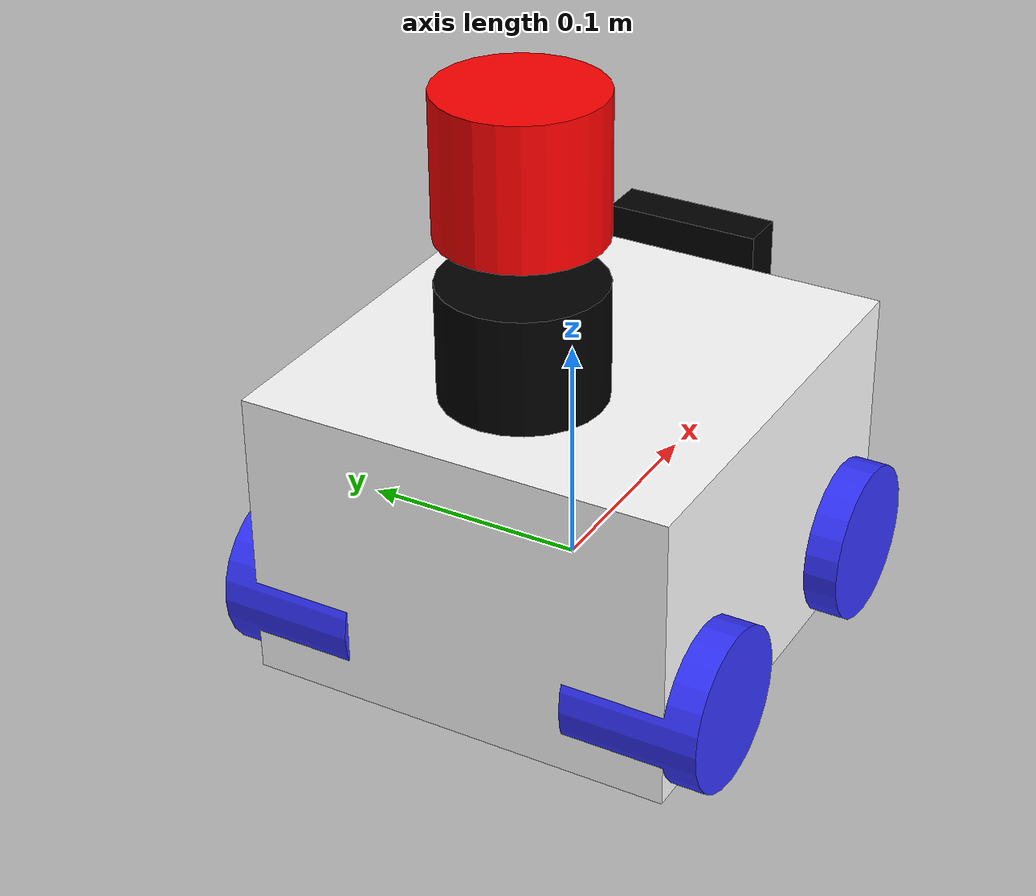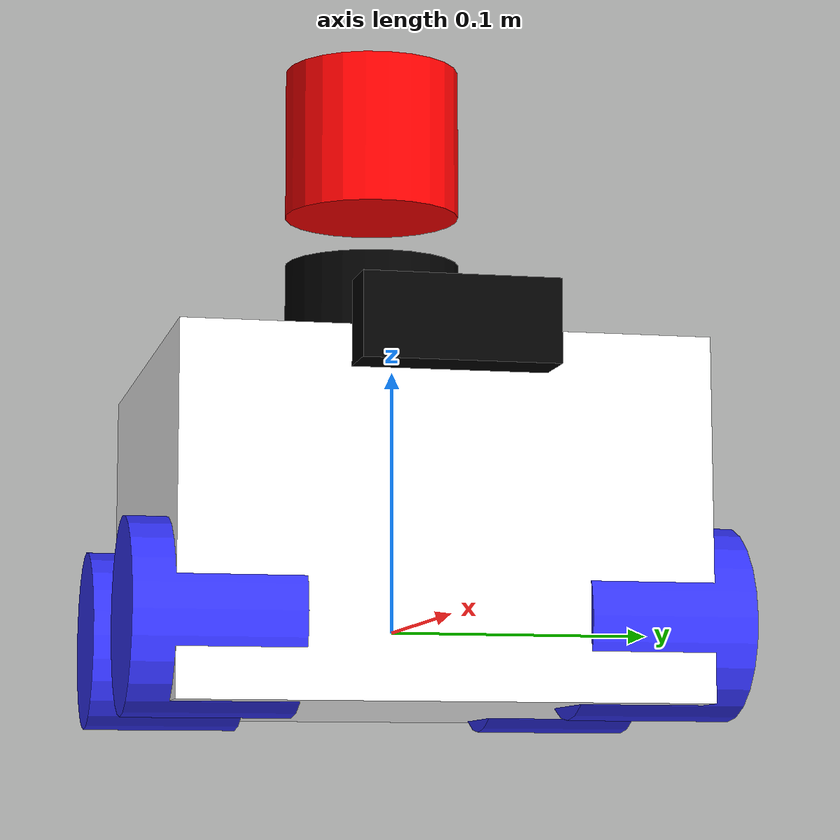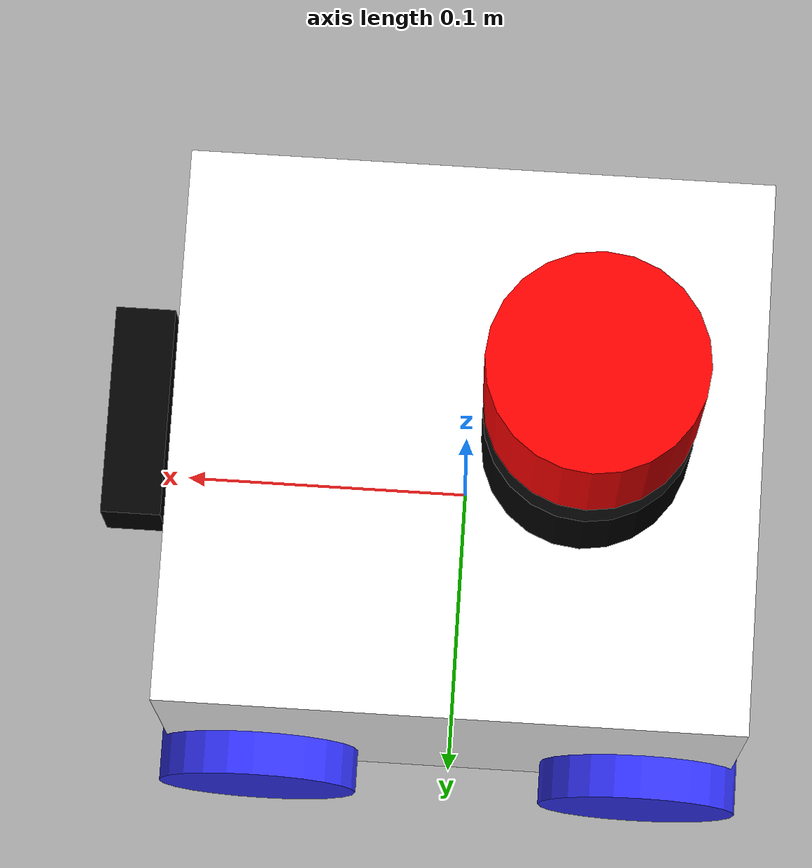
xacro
<?xml version="1.0"?>
<robot xmlns:xacro="http://www.ros.org/wiki/xacro"  name="lidar_bot">

	<xacro:arg name="use_ros2_control" default="true"/>

    <!-- Example link -->
    <xacro:include filename="inertial_macros.xacro" />
    <xacro:include filename="robot_core.xacro" />

	<xacro:if value="$(arg use_ros2_control)">
		<xacro:include filename="ros2_control.xacro" />
	</xacro:if>
	<xacro:unless value="$(arg use_ros2_control)">
		<xacro:include filename="gazebo_control.xacro" />
	</xacro:unless>

	<xacro:include filename="lidar.xacro" />
	<xacro:include filename="camera.xacro" />

</robot>

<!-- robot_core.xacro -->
<robot xmlns:xacro="http://www.ros.org/wiki/xacro">

    <material name="white">
        <color rgba="1 1 1 1"/>
    </material>

    <material name="orange">
        <color rgba="1 0.3 0.1 1"/>
    </material>

    <material name="blue">
        <color rgba="0.2 0.2 1 1"/>
    </material>

    <material name="black">
        <color rgba="0 0 0 1"/>
    </material>

	<material name="red">
		<color rgba="1 0 0 1"/>
	</material>

    <link name="base_link">
    </link>

    <joint name="chassis_joint" type="fixed">
        <parent link="base_link"/>
        <child link="chassis"/>
        <origin xyz="-0.1 0 0"/>
    </joint>

    <!-- CHASSIS -->
    <link name="chassis">
        <visual>
            <origin xyz="0.10 0 0.035" rpy="0 0 0"/>
            <geometry>
                <box size="0.20 0.19 0.13"/>
            </geometry>
            <material name="white"/>
        </visual>
        <collision>
            <origin xyz="0.10 0 0.035" rpy="0 0 0"/>
            <geometry>
                <box size="0.20 0.19 0.13"/>
            </geometry>
        </collision>
        <!-- ... intertia ... -->
        <xacro:inertial_box mass="0.5" x="0.20" y="0.19" z="0.13">
            <origin xyz="0.15 0 0.075" rpy="0 0 0"/>
        </xacro:inertial_box>
    </link>
	<gazebo reference="chassis">
		<material>Gazebo/White</material>
	</gazebo>

	<!-- LEFT BACK WHEEL -->
    <joint name="left_back_wheel_joint" type="continuous">
        <parent link="base_link"/>
        <child link="left_back_wheel"/>
        <origin xyz="-0.0675 0.08 0" rpy="-${pi/2} 0 0" />
        <axis xyz="0 0 1"/>
    </joint>

    <link name="left_back_wheel">
        <visual>
            <geometry>
                <cylinder radius="0.035" length="0.06"/>
            </geometry>
            <material name="blue"/>
        </visual>
        <collision>
            <geometry>
                <sphere  radius="0.035"/>
            </geometry>
        </collision>
        <!-- ... intertia ... -->
        <xacro:inertial_cylinder mass="0.1" length="0.035" radius="0.06">
            <origin xyz="0 0 0" rpy="0 0 0"/>
        </xacro:inertial_cylinder>
    </link>

	<gazebo reference="left_back_wheel">
		<material>Gazebo/Blue</material>
	</gazebo>

    <!-- LEFT FRONT WHEEL -->
    <joint name="left_front_wheel_joint" type="continuous"> <!--   continuous -->
        <parent link="base_link"/> <!--   base_link -->
        <child link="left_front_wheel"/>
        <origin xyz="0.0675 0.08 0" rpy="-${pi/2} 0 0"/>
        <axis xyz="0 0 1"/>
    </joint>

    <link name="left_front_wheel">
        <visual>
            <geometry>
                <cylinder radius="0.035" length="0.06" />
            </geometry>
            <material name="blue"/>
        </visual>
        <collision>
            <geometry>
                <cylinder radius="0.035" length="0.06"/>
            </geometry>
        </collision>
		<!-- ... intertia ... -->
        <xacro:inertial_cylinder mass="0.1" length="0.035" radius="0.06">
            <origin xyz="0 0 0" rpy="0 0 0"/>
        </xacro:inertial_cylinder>
    </link>

	<gazebo reference="left_front_wheel">
		<material>Gazebo/Blue</material>
		<mu1 value="0.1"/>
		<mu2 value="0.1"/>
	</gazebo>

    <!-- RIGHT BACK WHEEL -->
    <joint name="right_back_wheel_joint" type="continuous">
        <parent link="base_link"/>
        <child link="right_back_wheel"/>
        <origin xyz="-0.0675 -0.08 0" rpy="${pi/2} 0 0"/>
        <axis xyz="0 0 -1"/>
    </joint>

    <link name="right_back_wheel">
        <visual>
            <geometry>
                <cylinder radius="0.035" length="0.06" />
            </geometry>
            <material name="blue"/>
        </visual>
        <collision>
            <geometry>
                <sphere  radius="0.035"/>
			</geometry>
        </collision>
        <!-- ... intertia ... -->
        <xacro:inertial_cylinder mass="0.1" length="0.035" radius="0.06">
            <origin xyz="0 0 0" rpy="0 0 0"/>
        </xacro:inertial_cylinder>
    </link>

	<gazebo reference="right_back_wheel">
		<material>Gazebo/Blue</material>
	</gazebo>

    <!-- RIGHT FRONT WHEEL -->
    <joint name="right_front_wheel_joint" type="continuous">  <!--   continuous -->
        <parent link="base_link"/>  <!--   base_link -->
        <child link="right_front_wheel"/>
        <origin xyz="0.0675 -0.08 0" rpy="${pi/2} 0 0"/>
        <axis xyz="0 0 -1"/>
    </joint>

    <link name="right_front_wheel">
        <visual>
            <geometry>
                <cylinder radius="0.035" length="0.06" />
            </geometry>
            <material name="blue"/>
        </visual>
        <collision>
            <geometry>
                <cylinder radius="0.035" length="0.06"/>
            </geometry>
        </collision>
        <!-- ... intertia ... -->
        <xacro:inertial_cylinder mass="0.1" length="0.035" radius="0.06">
            <origin xyz="0 0 0" rpy="0 0 0"/>
        </xacro:inertial_cylinder>
    </link>

	<gazebo reference="right_front_wheel">
		<material>Gazebo/Blue</material>
		<mu1 value="0.1"/>
		<mu2 value="0.1"/>
	</gazebo>

</robot>

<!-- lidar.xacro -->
<robot xmlns:xacro="http://www.ros.org/wiki/xacro" >

	<!-- DELTA2G LIDAR -->
	<joint name="delta2g_lidar_joint" type="fixed">
        <parent link="chassis"/>
        <child link="delta2g"/>
        <origin xyz="0.06 0 0.17" rpy="0 0 0"/>
    </joint>
    <link name="delta2g">
        <visual>
			<origin xyz="0 0 -0.05" rpy="0 0 ${pi}"/>
            <geometry>
                <cylinder radius="0.035" length="0.06" />
            </geometry>
            <material name="black"/>
        </visual>
    </link>
	<gazebo reference="delta2g">
		<material>Gazebo/Black</material>
	</gazebo>

	 <!-- LIDAR -->
    <joint name="lidar_joint" type="fixed">
        <parent link="chassis"/>
        <child link="lidar"/>
        <origin xyz="0.06 0 0.20" rpy="0 0 0"/>
    </joint>

    <link name="lidar">
        <visual>
            <geometry>
                <cylinder radius="0.035" length="0.06" />
            </geometry>
            <material name="red"/>
        </visual>
        <collision>
            <geometry>
                <cylinder radius="0.035" length="0.06"/>
            </geometry>
        </collision>
        <!-- ... intertia ... -->
        <xacro:inertial_cylinder mass="0.1" length="0.035" radius="0.06">
            <origin xyz="0 0 0" rpy="0 0 0"/>
        </xacro:inertial_cylinder>
    </link>

	<gazebo reference="lidar">
		<material>Gazebo/Red</material>
		<sensor name="laser" type="ray">
			<pose> 0 0 0 0 0 0 </pose>
			<visualize>true</visualize>
			<update_rate>10</update_rate>
			<ray>
				<scan>
					<horizontal>
						<samples>360</samples>
						<min_angle>-3.14</min_angle>
						<max_angle>3.14</max_angle>
					</horizontal>
				</scan>
				<range>
					<min>0.3</min>
					<max>12</max>
				</range>
			</ray>
			<plugin name="laser_controller" filename="libgazebo_ros_ray_sensor.so">
				<ros>
					<argument>~/out:=scan</argument>
				</ros>
				<output_type>sensor_msgs/LaserScan</output_type>
				<frame_name>lidar</frame_name>
			</plugin>
		</sensor>
	</gazebo>

</robot>

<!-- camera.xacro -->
<robot xmlns:xacro="http://www.ros.org/wiki/xacro" >

    <joint name="camera_joint" type="fixed">
        <parent link="chassis"/>
        <child link="camera_link"/>
        <origin xyz="0.21 0 0.10" rpy="0 0 0"/>
    </joint>

    <link name="camera_link">
        <visual>
            <geometry>
                <box size="0.02 0.07 0.03"/>
            </geometry>
            <material name="black"/>
        </visual>
    </link>

    <joint name="camera_optical_joint" type="fixed">
        <parent link="camera_link"/>
        <child link="camera_link_optical"/>
        <origin xyz="0 0 0" rpy="${-pi/2} 0 ${-pi/2}"/>
    </joint>

    <link name="camera_link_optical"></link>

    <gazebo reference="camera_link">
        <material>Gazebo/Black</material>

        <sensor name="camera" type="camera">
            <pose> 0 0 0 0 0 0 </pose>
            <visualize>true</visualize>
            <update_rate>10</update_rate>
            <camera>
                <horizontal_fov>1.089</horizontal_fov>
                <image>
                    <format>R8G8B8</format>
                    <width>640</width>
                    <height>480</height>
                </image>
                <clip>
                    <near>0.05</near>
                    <far>8.0</far>
                </clip>
            </camera>
            <plugin name="camera_controller" filename="libgazebo_ros_camera.so">
                <frame_name>camera_link_optical</frame_name>
            </plugin>
        </sensor>
    </gazebo>

</robot>
